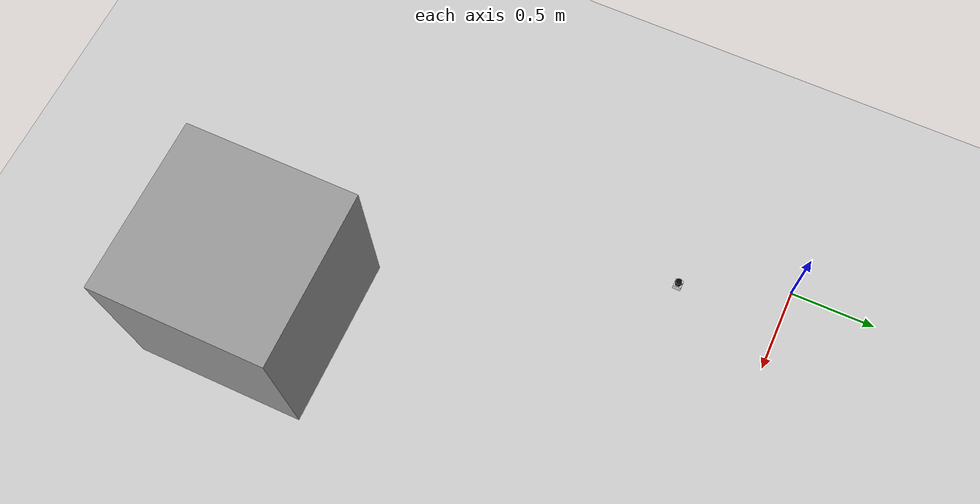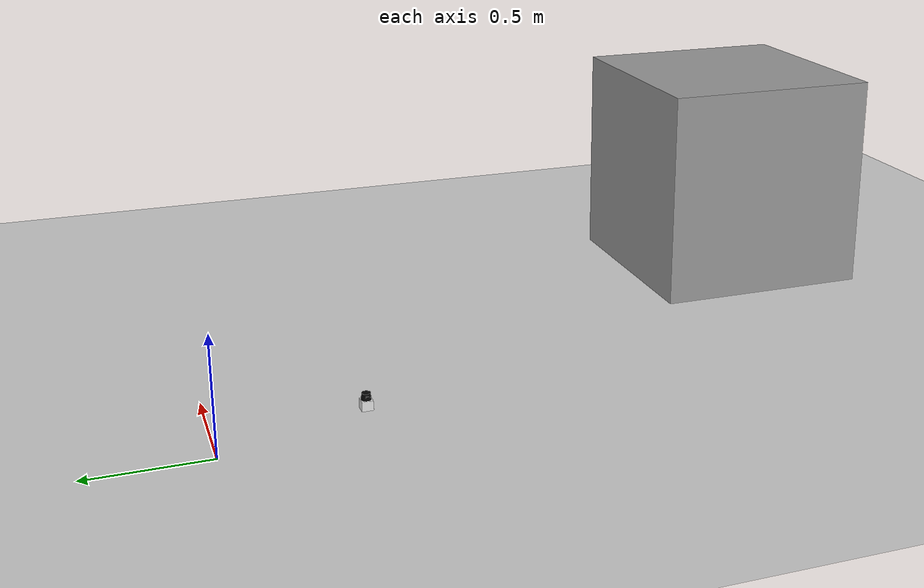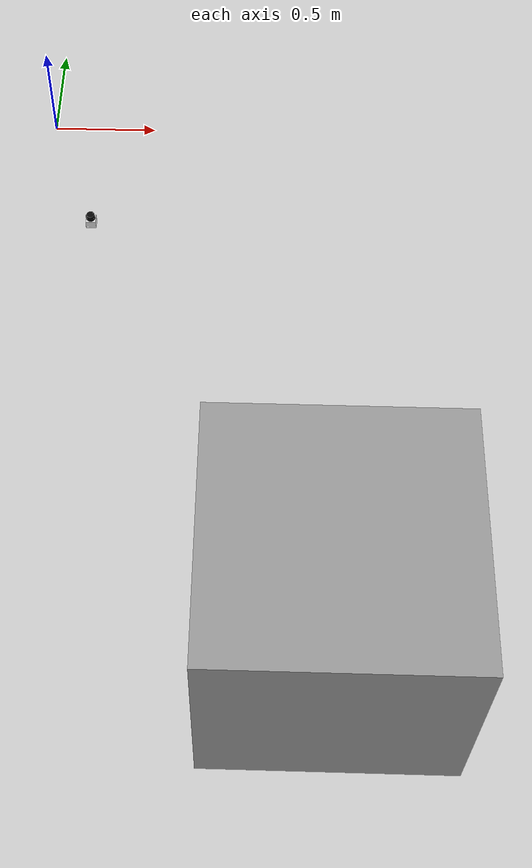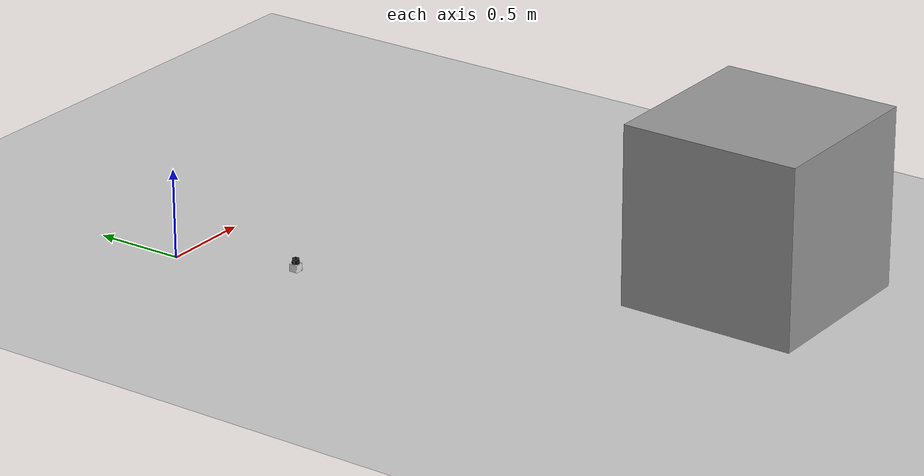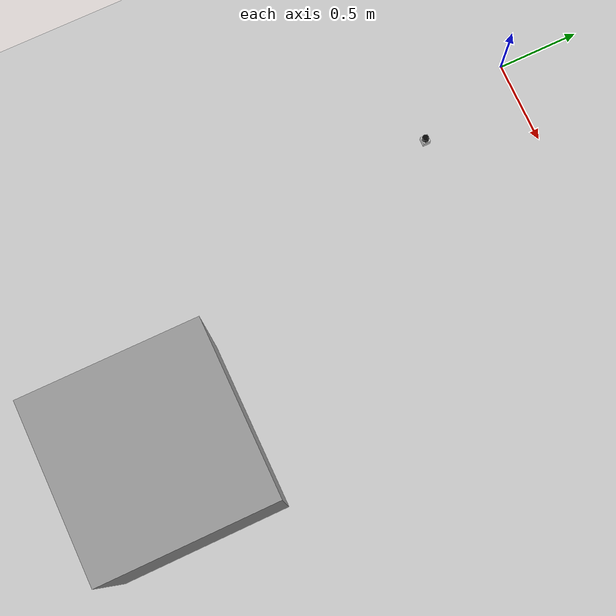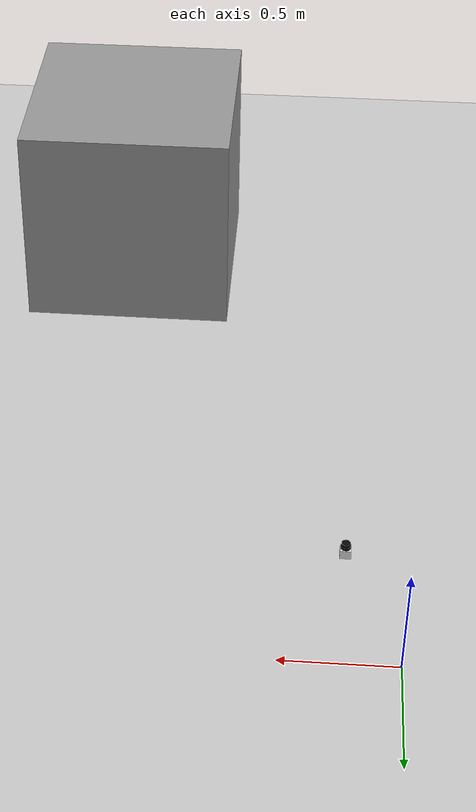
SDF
<sdf version="1.6">
 <world name="default">
  <light name="sun" type="directional">
   <pose>0 0 10 0 -0 0</pose>
   <diffuse>0.8 0.8 0.8 1</diffuse>
   <specular>0.2 0.2 0.2 1</specular>
   <attenuation>
    <range>1000</range>
    <constant>0.9</constant>
    <linear>0.01</linear>
    <quadratic>0.001</quadratic>
   </attenuation>
   <direction>-0.5 0.1 -0.9</direction>
  </light>
  <model name="ground_plane">
   <static>1</static>
   <link name="link">
    <collision name="collision">
     <geometry><plane><normal>0 0 1</normal><size>100 100</size></plane></geometry>
     <surface><friction><ode><mu>100</mu><mu2>50</mu2></ode></friction></surface>
    </collision>
    <visual name="visual">
     <cast_shadows>0</cast_shadows>
     <geometry><plane><normal>0 0 1</normal><size>100 100</size></plane></geometry>
     <material>
      <script><uri>file://media/materials/scripts/gazebo.material</uri><name>Gazebo/Grey</name></script>
     </material>
    </visual>
   </link>
  </model>
  <gravity>0 0 -9.8</gravity>
  <magnetic_field>6e-06 2.3e-05 -4.2e-05</magnetic_field>
  <atmosphere type="adiabatic"/>
  <physics name="default_physics" default="0" type="ode">
   <max_step_size>0.001</max_step_size>
   <real_time_factor>1</real_time_factor>
   <real_time_update_rate>1000</real_time_update_rate>
  </physics>
  <scene><ambient>0.4 0.4 0.4 1</ambient><background>0.7 0.7 0.7 1</background><shadows>1</shadows></scene>
  <spherical_coordinates>
   <surface_model>EARTH_WGS84</surface_model>
   <latitude_deg>0</latitude_deg>
   <longitude_deg>0</longitude_deg>
   <elevation>0</elevation>
   <heading_deg>0</heading_deg>
  </spherical_coordinates>
  <model name="hokuyo_with_ros_plug">
   <link name="link">
    <inertial>
     <mass>0.1</mass>
     <inertia><ixx>1</ixx><ixy>0</ixy><ixz>0</ixz><iyy>1</iyy><iyz>0</iyz><izz>1</izz></inertia>
    </inertial>
    <sensor name="laser" type="ray">
     <pose>0.01 0 0.0175 0 -0 0</pose>
     <ray>
      <scan>
       <horizontal>
        <samples>640</samples>
        <resolution>1</resolution>
        <min_angle>-2.26889</min_angle>
        <max_angle>2.2689</max_angle>
       </horizontal>
       <vertical><samples>1</samples><min_angle>0</min_angle><max_angle>0</max_angle></vertical>
      </scan>
      <range><min>0.08</min><max>10</max><resolution>0.01</resolution></range>
     </ray>
     <plugin name="laser" filename="libRayPlugin.so"/>
     <always_on>1</always_on>
     <update_rate>30</update_rate>
     <visualize>1</visualize>
    </sensor>
    <visual name="visual">
     <geometry><mesh><uri>model://hokuyo/meshes/hokuyo.dae</uri><scale>1 1 1</scale></mesh></geometry>
    </visual>
    <collision name="collision-base">
     <pose>0 0 -0.0145 0 -0 0</pose>
     <geometry><box><size>0.05 0.05 0.041</size></box></geometry>
     <surface>
      <friction>
       <ode><mu>1</mu><mu2>1</mu2><fdir1>0 0 0</fdir1><slip1>0</slip1><slip2>0</slip2></ode>
       <torsional>
        <coefficient>1</coefficient>
        <patch_radius>0</patch_radius>
        <surface_radius>0</surface_radius>
        <use_patch_radius>1</use_patch_radius>
        <ode><slip>0</slip></ode>
       </torsional>
      </friction>
      <bounce><restitution_coefficient>0</restitution_coefficient><threshold>1e+06</threshold></bounce>
      <contact>
       <collide_without_contact>0</collide_without_contact>
       <collide_without_contact_bitmask>1</collide_without_contact_bitmask>
       <collide_bitmask>1</collide_bitmask>
       <ode>
        <soft_cfm>0</soft_cfm>
        <soft_erp>0.2</soft_erp>
        <kp>1e+13</kp>
        <kd>1</kd>
        <max_vel>0.01</max_vel>
        <min_depth>0</min_depth>
       </ode>
       <bullet>
        <split_impulse>1</split_impulse>
        <split_impulse_penetration_threshold>-0.01</split_impulse_penetration_threshold>
        <soft_cfm>0</soft_cfm>
        <soft_erp>0.2</soft_erp>
        <kp>1e+13</kp>
        <kd>1</kd>
       </bullet>
      </contact>
     </surface>
    </collision>
    <collision name="collision-top">
     <pose>0 0 0.0205 0 -0 0</pose>
     <geometry><cylinder><radius>0.021</radius><length>0.029</length></cylinder></geometry>
     <surface>
      <friction>
       <ode><mu>1</mu><mu2>1</mu2><fdir1>0 0 0</fdir1><slip1>0</slip1><slip2>0</slip2></ode>
       <torsional>
        <coefficient>1</coefficient>
        <patch_radius>0</patch_radius>
        <surface_radius>0</surface_radius>
        <use_patch_radius>1</use_patch_radius>
        <ode><slip>0</slip></ode>
       </torsional>
      </friction>
      <bounce><restitution_coefficient>0</restitution_coefficient><threshold>1e+06</threshold></bounce>
      <contact>
       <collide_without_contact>0</collide_without_contact>
       <collide_without_contact_bitmask>1</collide_without_contact_bitmask>
       <collide_bitmask>1</collide_bitmask>
       <ode>
        <soft_cfm>0</soft_cfm>
        <soft_erp>0.2</soft_erp>
        <kp>1e+13</kp>
        <kd>1</kd>
        <max_vel>0.01</max_vel>
        <min_depth>0</min_depth>
       </ode>
       <bullet>
        <split_impulse>1</split_impulse>
        <split_impulse_penetration_threshold>-0.01</split_impulse_penetration_threshold>
        <soft_cfm>0</soft_cfm>
        <soft_erp>0.2</soft_erp>
        <kp>1e+13</kp>
        <kd>1</kd>
       </bullet>
      </contact>
     </surface>
    </collision>
   </link>
   <static>1</static>
   <plugin name="gazebo_ros_head_hokuyo_controller" filename="libgazebo_ros_gpu_laser.so">
    <topicName>/rrbot/laser/scan</topicName>
    <frameName>hokuyo_link</frameName>
   </plugin>
   <pose>0.228932 -0.619342 0.035 -1e-06 -3e-06 -0</pose>
  </model>
  <model name="unit_box">
   <pose>1.34055 -2.74768 0.5 0 -0 0</pose>
   <link name="link">
    <inertial>
     <mass>1</mass>
     <inertia>
      <ixx>0.166667</ixx>
      <ixy>0</ixy>
      <ixz>0</ixz>
      <iyy>0.166667</iyy>
      <iyz>0</iyz>
      <izz>0.166667</izz>
     </inertia>
    </inertial>
    <collision name="collision"><geometry><box><size>1 1 1</size></box></geometry></collision>
    <visual name="visual">
     <geometry><box><size>1 1 1</size></box></geometry>
     <material>
      <script><name>Gazebo/Grey</name><uri>file://media/materials/scripts/gazebo.material</uri></script>
     </material>
    </visual>
   </link>
  </model>
 </world>
</sdf>
